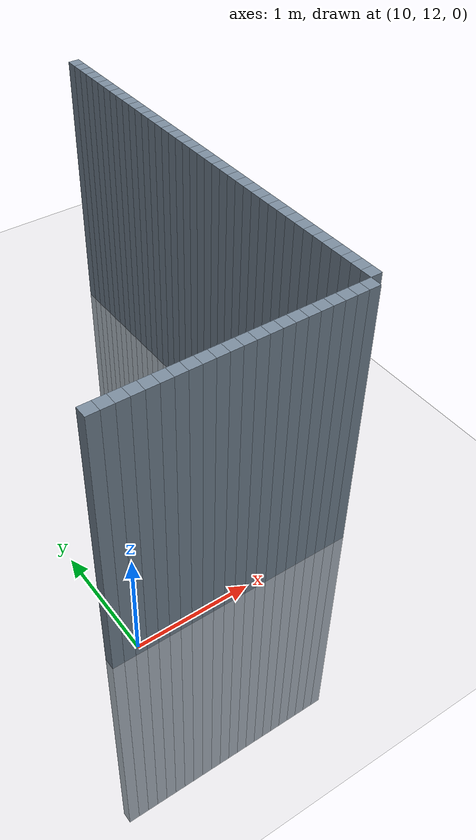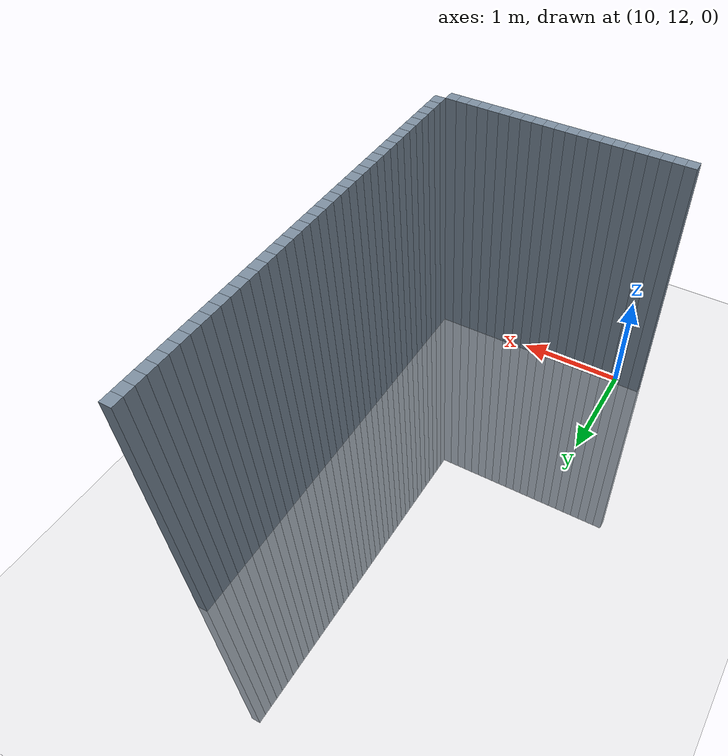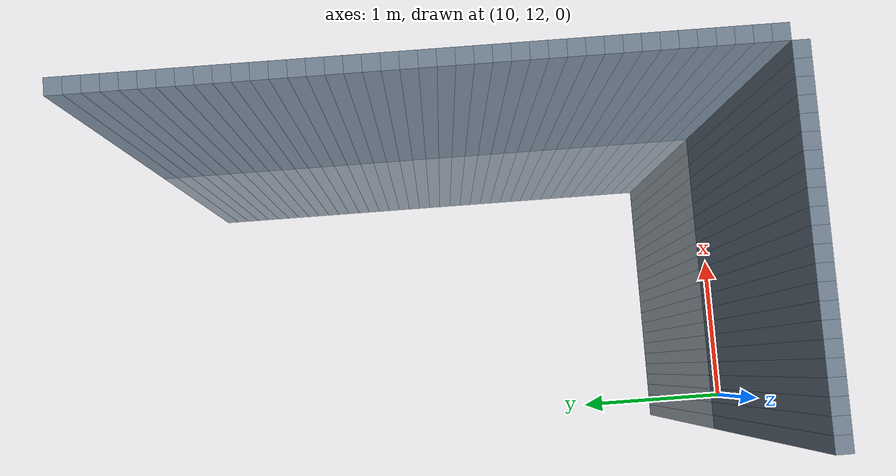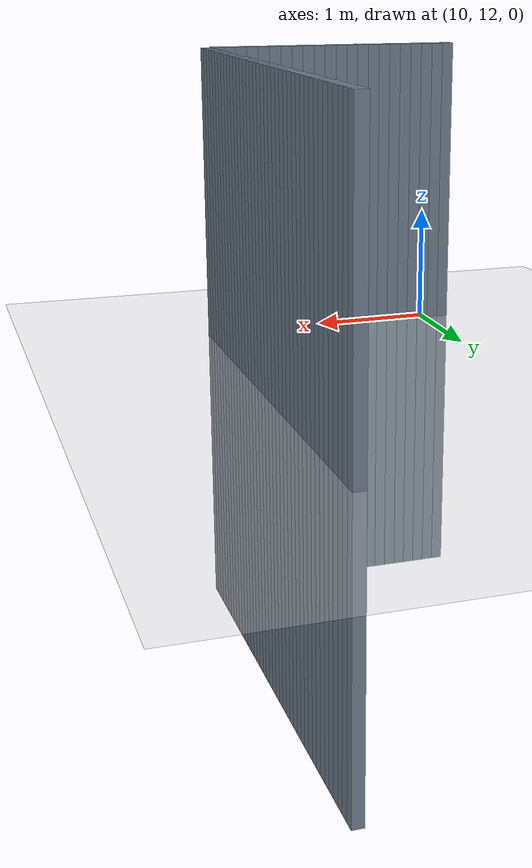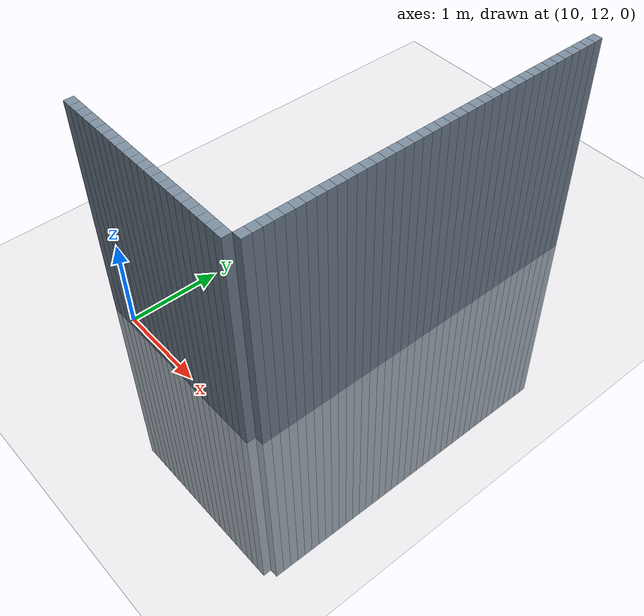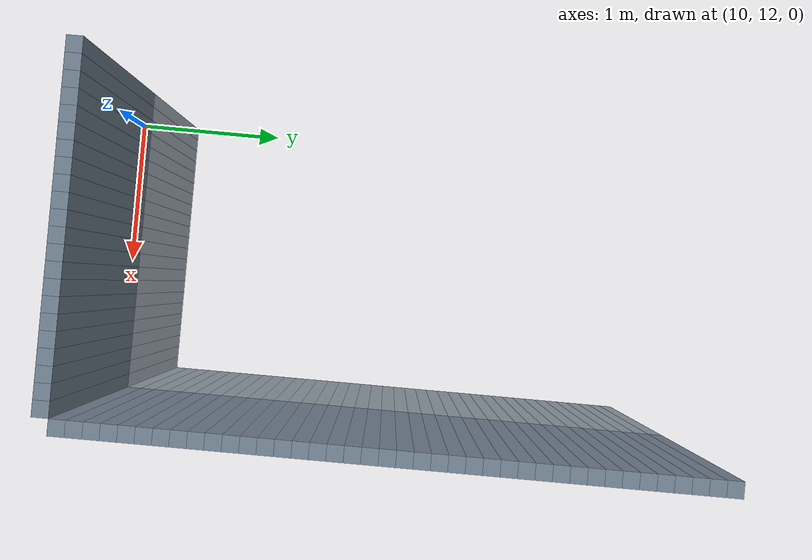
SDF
<sdf version="1.6">
 <world name="default">
  <model name="ground_plane">
   <static>1</static>
   <link name="link">
    <collision name="collision">
     <geometry><plane><normal>0 0 1</normal><size>100 100</size></plane></geometry>
     <surface><friction><ode><mu>100</mu><mu2>50</mu2></ode></friction></surface>
    </collision>
    <visual name="visual">
     <cast_shadows>0</cast_shadows>
     <geometry><plane><normal>0 0 1</normal><size>100 100</size></plane></geometry>
     <material>
      <script><uri>file://media/materials/scripts/gazebo.material</uri><name>Gazebo/Grey</name></script>
     </material>
    </visual>
   </link>
  </model>
  <model name="unit_cylinder_512">
   <static>1</static>
   <pose>9.8 12 0 0 -0 0</pose>
   <link name="link">
    <inertial>
     <mass>1</mass>
     <inertia><ixx>0.145833</ixx><ixy>0</ixy><ixz>0</ixz><iyy>0.145833</iyy><iyz>0</iyz><izz>0.125</izz></inertia>
    </inertial>
    <collision name="collision"><geometry><box><size>0.1 0.1 5</size></box></geometry></collision>
    <visual name="visual">
     <geometry><box><size>0.1 0.1 5</size></box></geometry>
     <material><ambient>0.466667 0.533333 0.6 1</ambient><diffuse>0.466667 0.533333 0.6 1</diffuse></material>
     <material>
      <script><name>Gazebo/Grey</name><uri>file://media/materials/scripts/gazebo.material</uri></script>
     </material>
    </visual>
   </link>
  </model>
  <model name="unit_cylinder_516">
   <static>1</static>
   <pose>9.9 12 0 0 -0 0</pose>
   <link name="link">
    <inertial>
     <mass>1</mass>
     <inertia><ixx>0.145833</ixx><ixy>0</ixy><ixz>0</ixz><iyy>0.145833</iyy><iyz>0</iyz><izz>0.125</izz></inertia>
    </inertial>
    <collision name="collision"><geometry><box><size>0.1 0.1 5</size></box></geometry></collision>
    <visual name="visual">
     <geometry><box><size>0.1 0.1 5</size></box></geometry>
     <material><ambient>0.466667 0.533333 0.6 1</ambient><diffuse>0.466667 0.533333 0.6 1</diffuse></material>
     <material>
      <script><name>Gazebo/Grey</name><uri>file://media/materials/scripts/gazebo.material</uri></script>
     </material>
    </visual>
   </link>
  </model>
  <model name="unit_cylinder_520">
   <static>1</static>
   <pose>10 12 0 0 -0 0</pose>
   <link name="link">
    <inertial>
     <mass>1</mass>
     <inertia><ixx>0.145833</ixx><ixy>0</ixy><ixz>0</ixz><iyy>0.145833</iyy><iyz>0</iyz><izz>0.125</izz></inertia>
    </inertial>
    <collision name="collision"><geometry><box><size>0.1 0.1 5</size></box></geometry></collision>
    <visual name="visual">
     <geometry><box><size>0.1 0.1 5</size></box></geometry>
     <material><ambient>0.466667 0.533333 0.6 1</ambient><diffuse>0.466667 0.533333 0.6 1</diffuse></material>
     <material>
      <script><name>Gazebo/Grey</name><uri>file://media/materials/scripts/gazebo.material</uri></script>
     </material>
    </visual>
   </link>
  </model>
  <model name="unit_cylinder_524">
   <static>1</static>
   <pose>10.1 12 0 0 -0 0</pose>
   <link name="link">
    <inertial>
     <mass>1</mass>
     <inertia><ixx>0.145833</ixx><ixy>0</ixy><ixz>0</ixz><iyy>0.145833</iyy><iyz>0</iyz><izz>0.125</izz></inertia>
    </inertial>
    <collision name="collision"><geometry><box><size>0.1 0.1 5</size></box></geometry></collision>
    <visual name="visual">
     <geometry><box><size>0.1 0.1 5</size></box></geometry>
     <material><ambient>0.466667 0.533333 0.6 1</ambient><diffuse>0.466667 0.533333 0.6 1</diffuse></material>
     <material>
      <script><name>Gazebo/Grey</name><uri>file://media/materials/scripts/gazebo.material</uri></script>
     </material>
    </visual>
   </link>
  </model>
  <model name="unit_cylinder_528">
   <static>1</static>
   <pose>10.2 12 0 0 -0 0</pose>
   <link name="link">
    <inertial>
     <mass>1</mass>
     <inertia><ixx>0.145833</ixx><ixy>0</ixy><ixz>0</ixz><iyy>0.145833</iyy><iyz>0</iyz><izz>0.125</izz></inertia>
    </inertial>
    <collision name="collision"><geometry><box><size>0.1 0.1 5</size></box></geometry></collision>
    <visual name="visual">
     <geometry><box><size>0.1 0.1 5</size></box></geometry>
     <material><ambient>0.466667 0.533333 0.6 1</ambient><diffuse>0.466667 0.533333 0.6 1</diffuse></material>
     <material>
      <script><name>Gazebo/Grey</name><uri>file://media/materials/scripts/gazebo.material</uri></script>
     </material>
    </visual>
   </link>
  </model>
  <model name="unit_cylinder_532">
   <static>1</static>
   <pose>10.3 12 0 0 -0 0</pose>
   <link name="link">
    <inertial>
     <mass>1</mass>
     <inertia><ixx>0.145833</ixx><ixy>0</ixy><ixz>0</ixz><iyy>0.145833</iyy><iyz>0</iyz><izz>0.125</izz></inertia>
    </inertial>
    <collision name="collision"><geometry><box><size>0.1 0.1 5</size></box></geometry></collision>
    <visual name="visual">
     <geometry><box><size>0.1 0.1 5</size></box></geometry>
     <material><ambient>0.466667 0.533333 0.6 1</ambient><diffuse>0.466667 0.533333 0.6 1</diffuse></material>
     <material>
      <script><name>Gazebo/Grey</name><uri>file://media/materials/scripts/gazebo.material</uri></script>
     </material>
    </visual>
   </link>
  </model>
  <model name="unit_cylinder_536">
   <static>1</static>
   <pose>10.4 12 0 0 -0 0</pose>
   <link name="link">
    <inertial>
     <mass>1</mass>
     <inertia><ixx>0.145833</ixx><ixy>0</ixy><ixz>0</ixz><iyy>0.145833</iyy><iyz>0</iyz><izz>0.125</izz></inertia>
    </inertial>
    <collision name="collision"><geometry><box><size>0.1 0.1 5</size></box></geometry></collision>
    <visual name="visual">
     <geometry><box><size>0.1 0.1 5</size></box></geometry>
     <material><ambient>0.466667 0.533333 0.6 1</ambient><diffuse>0.466667 0.533333 0.6 1</diffuse></material>
     <material>
      <script><name>Gazebo/Grey</name><uri>file://media/materials/scripts/gazebo.material</uri></script>
     </material>
    </visual>
   </link>
  </model>
  <model name="unit_cylinder_540">
   <static>1</static>
   <pose>10.5 12 0 0 -0 0</pose>
   <link name="link">
    <inertial>
     <mass>1</mass>
     <inertia><ixx>0.145833</ixx><ixy>0</ixy><ixz>0</ixz><iyy>0.145833</iyy><iyz>0</iyz><izz>0.125</izz></inertia>
    </inertial>
    <collision name="collision"><geometry><box><size>0.1 0.1 5</size></box></geometry></collision>
    <visual name="visual">
     <geometry><box><size>0.1 0.1 5</size></box></geometry>
     <material><ambient>0.466667 0.533333 0.6 1</ambient><diffuse>0.466667 0.533333 0.6 1</diffuse></material>
     <material>
      <script><name>Gazebo/Grey</name><uri>file://media/materials/scripts/gazebo.material</uri></script>
     </material>
    </visual>
   </link>
  </model>
  <model name="unit_cylinder_544">
   <static>1</static>
   <pose>10.6 12 0 0 -0 0</pose>
   <link name="link">
    <inertial>
     <mass>1</mass>
     <inertia><ixx>0.145833</ixx><ixy>0</ixy><ixz>0</ixz><iyy>0.145833</iyy><iyz>0</iyz><izz>0.125</izz></inertia>
    </inertial>
    <collision name="collision"><geometry><box><size>0.1 0.1 5</size></box></geometry></collision>
    <visual name="visual">
     <geometry><box><size>0.1 0.1 5</size></box></geometry>
     <material><ambient>0.466667 0.533333 0.6 1</ambient><diffuse>0.466667 0.533333 0.6 1</diffuse></material>
     <material>
      <script><name>Gazebo/Grey</name><uri>file://media/materials/scripts/gazebo.material</uri></script>
     </material>
    </visual>
   </link>
  </model>
  <model name="unit_cylinder_548">
   <static>1</static>
   <pose>10.7 12 0 0 -0 0</pose>
   <link name="link">
    <inertial>
     <mass>1</mass>
     <inertia><ixx>0.145833</ixx><ixy>0</ixy><ixz>0</ixz><iyy>0.145833</iyy><iyz>0</iyz><izz>0.125</izz></inertia>
    </inertial>
    <collision name="collision"><geometry><box><size>0.1 0.1 5</size></box></geometry></collision>
    <visual name="visual">
     <geometry><box><size>0.1 0.1 5</size></box></geometry>
     <material><ambient>0.466667 0.533333 0.6 1</ambient><diffuse>0.466667 0.533333 0.6 1</diffuse></material>
     <material>
      <script><name>Gazebo/Grey</name><uri>file://media/materials/scripts/gazebo.material</uri></script>
     </material>
    </visual>
   </link>
  </model>
  <model name="unit_cylinder_552">
   <static>1</static>
   <pose>10.8 12 0 0 -0 0</pose>
   <link name="link">
    <inertial>
     <mass>1</mass>
     <inertia><ixx>0.145833</ixx><ixy>0</ixy><ixz>0</ixz><iyy>0.145833</iyy><iyz>0</iyz><izz>0.125</izz></inertia>
    </inertial>
    <collision name="collision"><geometry><box><size>0.1 0.1 5</size></box></geometry></collision>
    <visual name="visual">
     <geometry><box><size>0.1 0.1 5</size></box></geometry>
     <material><ambient>0.466667 0.533333 0.6 1</ambient><diffuse>0.466667 0.533333 0.6 1</diffuse></material>
     <material>
      <script><name>Gazebo/Grey</name><uri>file://media/materials/scripts/gazebo.material</uri></script>
     </material>
    </visual>
   </link>
  </model>
  <model name="unit_cylinder_556">
   <static>1</static>
   <pose>10.9 12 0 0 -0 0</pose>
   <link name="link">
    <inertial>
     <mass>1</mass>
     <inertia><ixx>0.145833</ixx><ixy>0</ixy><ixz>0</ixz><iyy>0.145833</iyy><iyz>0</iyz><izz>0.125</izz></inertia>
    </inertial>
    <collision name="collision"><geometry><box><size>0.1 0.1 5</size></box></geometry></collision>
    <visual name="visual">
     <geometry><box><size>0.1 0.1 5</size></box></geometry>
     <material><ambient>0.466667 0.533333 0.6 1</ambient><diffuse>0.466667 0.533333 0.6 1</diffuse></material>
     <material>
      <script><name>Gazebo/Grey</name><uri>file://media/materials/scripts/gazebo.material</uri></script>
     </material>
    </visual>
   </link>
  </model>
  <model name="unit_cylinder_560">
   <static>1</static>
   <pose>11 12 0 0 -0 0</pose>
   <link name="link">
    <inertial>
     <mass>1</mass>
     <inertia><ixx>0.145833</ixx><ixy>0</ixy><ixz>0</ixz><iyy>0.145833</iyy><iyz>0</iyz><izz>0.125</izz></inertia>
    </inertial>
    <collision name="collision"><geometry><box><size>0.1 0.1 5</size></box></geometry></collision>
    <visual name="visual">
     <geometry><box><size>0.1 0.1 5</size></box></geometry>
     <material><ambient>0.466667 0.533333 0.6 1</ambient><diffuse>0.466667 0.533333 0.6 1</diffuse></material>
     <material>
      <script><name>Gazebo/Grey</name><uri>file://media/materials/scripts/gazebo.material</uri></script>
     </material>
    </visual>
   </link>
  </model>
  <model name="unit_cylinder_564">
   <static>1</static>
   <pose>11.1 12 0 0 -0 0</pose>
   <link name="link">
    <inertial>
     <mass>1</mass>
     <inertia><ixx>0.145833</ixx><ixy>0</ixy><ixz>0</ixz><iyy>0.145833</iyy><iyz>0</iyz><izz>0.125</izz></inertia>
    </inertial>
    <collision name="collision"><geometry><box><size>0.1 0.1 5</size></box></geometry></collision>
    <visual name="visual">
     <geometry><box><size>0.1 0.1 5</size></box></geometry>
     <material><ambient>0.466667 0.533333 0.6 1</ambient><diffuse>0.466667 0.533333 0.6 1</diffuse></material>
     <material>
      <script><name>Gazebo/Grey</name><uri>file://media/materials/scripts/gazebo.material</uri></script>
     </material>
    </visual>
   </link>
  </model>
  <model name="unit_cylinder_568">
   <static>1</static>
   <pose>11.2 12 0 0 -0 0</pose>
   <link name="link">
    <inertial>
     <mass>1</mass>
     <inertia><ixx>0.145833</ixx><ixy>0</ixy><ixz>0</ixz><iyy>0.145833</iyy><iyz>0</iyz><izz>0.125</izz></inertia>
    </inertial>
    <collision name="collision"><geometry><box><size>0.1 0.1 5</size></box></geometry></collision>
    <visual name="visual">
     <geometry><box><size>0.1 0.1 5</size></box></geometry>
     <material><ambient>0.466667 0.533333 0.6 1</ambient><diffuse>0.466667 0.533333 0.6 1</diffuse></material>
     <material>
      <script><name>Gazebo/Grey</name><uri>file://media/materials/scripts/gazebo.material</uri></script>
     </material>
    </visual>
   </link>
  </model>
  <model name="unit_cylinder_572">
   <static>1</static>
   <pose>11.3 12 0 0 -0 0</pose>
   <link name="link">
    <inertial>
     <mass>1</mass>
     <inertia><ixx>0.145833</ixx><ixy>0</ixy><ixz>0</ixz><iyy>0.145833</iyy><iyz>0</iyz><izz>0.125</izz></inertia>
    </inertial>
    <collision name="collision"><geometry><box><size>0.1 0.1 5</size></box></geometry></collision>
    <visual name="visual">
     <geometry><box><size>0.1 0.1 5</size></box></geometry>
     <material><ambient>0.466667 0.533333 0.6 1</ambient><diffuse>0.466667 0.533333 0.6 1</diffuse></material>
     <material>
      <script><name>Gazebo/Grey</name><uri>file://media/materials/scripts/gazebo.material</uri></script>
     </material>
    </visual>
   </link>
  </model>
  <model name="unit_cylinder_576">
   <static>1</static>
   <pose>11.4 12 0 0 -0 0</pose>
   <link name="link">
    <inertial>
     <mass>1</mass>
     <inertia><ixx>0.145833</ixx><ixy>0</ixy><ixz>0</ixz><iyy>0.145833</iyy><iyz>0</iyz><izz>0.125</izz></inertia>
    </inertial>
    <collision name="collision"><geometry><box><size>0.1 0.1 5</size></box></geometry></collision>
    <visual name="visual">
     <geometry><box><size>0.1 0.1 5</size></box></geometry>
     <material><ambient>0.466667 0.533333 0.6 1</ambient><diffuse>0.466667 0.533333 0.6 1</diffuse></material>
     <material>
      <script><name>Gazebo/Grey</name><uri>file://media/materials/scripts/gazebo.material</uri></script>
     </material>
    </visual>
   </link>
  </model>
  <model name="unit_cylinder_580">
   <static>1</static>
   <pose>11.5 12 0 0 -0 0</pose>
   <link name="link">
    <inertial>
     <mass>1</mass>
     <inertia><ixx>0.145833</ixx><ixy>0</ixy><ixz>0</ixz><iyy>0.145833</iyy><iyz>0</iyz><izz>0.125</izz></inertia>
    </inertial>
    <collision name="collision"><geometry><box><size>0.1 0.1 5</size></box></geometry></collision>
    <visual name="visual">
     <geometry><box><size>0.1 0.1 5</size></box></geometry>
     <material><ambient>0.466667 0.533333 0.6 1</ambient><diffuse>0.466667 0.533333 0.6 1</diffuse></material>
     <material>
      <script><name>Gazebo/Grey</name><uri>file://media/materials/scripts/gazebo.material</uri></script>
     </material>
    </visual>
   </link>
  </model>
  <model name="unit_cylinder_584">
   <static>1</static>
   <pose>11.6 12 0 0 -0 0</pose>
   <link name="link">
    <inertial>
     <mass>1</mass>
     <inertia><ixx>0.145833</ixx><ixy>0</ixy><ixz>0</ixz><iyy>0.145833</iyy><iyz>0</iyz><izz>0.125</izz></inertia>
    </inertial>
    <collision name="collision"><geometry><box><size>0.1 0.1 5</size></box></geometry></collision>
    <visual name="visual">
     <geometry><box><size>0.1 0.1 5</size></box></geometry>
     <material><ambient>0.466667 0.533333 0.6 1</ambient><diffuse>0.466667 0.533333 0.6 1</diffuse></material>
     <material>
      <script><name>Gazebo/Grey</name><uri>file://media/materials/scripts/gazebo.material</uri></script>
     </material>
    </visual>
   </link>
  </model>
  <model name="unit_cylinder_588">
   <static>1</static>
   <pose>11.7 12 0 0 -0 0</pose>
   <link name="link">
    <inertial>
     <mass>1</mass>
     <inertia><ixx>0.145833</ixx><ixy>0</ixy><ixz>0</ixz><iyy>0.145833</iyy><iyz>0</iyz><izz>0.125</izz></inertia>
    </inertial>
    <collision name="collision"><geometry><box><size>0.1 0.1 5</size></box></geometry></collision>
    <visual name="visual">
     <geometry><box><size>0.1 0.1 5</size></box></geometry>
     <material><ambient>0.466667 0.533333 0.6 1</ambient><diffuse>0.466667 0.533333 0.6 1</diffuse></material>
     <material>
      <script><name>Gazebo/Grey</name><uri>file://media/materials/scripts/gazebo.material</uri></script>
     </material>
    </visual>
   </link>
  </model>
  <model name="unit_cylinder_592">
   <static>1</static>
   <pose>11.8 12 0 0 -0 0</pose>
   <link name="link">
    <inertial>
     <mass>1</mass>
     <inertia><ixx>0.145833</ixx><ixy>0</ixy><ixz>0</ixz><iyy>0.145833</iyy><iyz>0</iyz><izz>0.125</izz></inertia>
    </inertial>
    <collision name="collision"><geometry><box><size>0.1 0.1 5</size></box></geometry></collision>
    <visual name="visual">
     <geometry><box><size>0.1 0.1 5</size></box></geometry>
     <material><ambient>0.466667 0.533333 0.6 1</ambient><diffuse>0.466667 0.533333 0.6 1</diffuse></material>
     <material>
      <script><name>Gazebo/Grey</name><uri>file://media/materials/scripts/gazebo.material</uri></script>
     </material>
    </visual>
   </link>
  </model>
  <model name="unit_cylinder_596">
   <static>1</static>
   <pose>11.9 12 0 0 -0 0</pose>
   <link name="link">
    <inertial>
     <mass>1</mass>
     <inertia><ixx>0.145833</ixx><ixy>0</ixy><ixz>0</ixz><iyy>0.145833</iyy><iyz>0</iyz><izz>0.125</izz></inertia>
    </inertial>
    <collision name="collision"><geometry><box><size>0.1 0.1 5</size></box></geometry></collision>
    <visual name="visual">
     <geometry><box><size>0.1 0.1 5</size></box></geometry>
     <material><ambient>0.466667 0.533333 0.6 1</ambient><diffuse>0.466667 0.533333 0.6 1</diffuse></material>
     <material>
      <script><name>Gazebo/Grey</name><uri>file://media/materials/scripts/gazebo.material</uri></script>
     </material>
    </visual>
   </link>
  </model>
  <model name="unit_cylinder_719">
   <static>1</static>
   <pose>12 12.1 0 0 -0 0</pose>
   <link name="link">
    <inertial>
     <mass>1</mass>
     <inertia><ixx>0.145833</ixx><ixy>0</ixy><ixz>0</ixz><iyy>0.145833</iyy><iyz>0</iyz><izz>0.125</izz></inertia>
    </inertial>
    <collision name="collision"><geometry><box><size>0.1 0.1 5</size></box></geometry></collision>
    <visual name="visual">
     <geometry><box><size>0.1 0.1 5</size></box></geometry>
     <material><ambient>0.466667 0.533333 0.6 1</ambient><diffuse>0.466667 0.533333 0.6 1</diffuse></material>
     <material>
      <script><name>Gazebo/Grey</name><uri>file://media/materials/scripts/gazebo.material</uri></script>
     </material>
    </visual>
   </link>
  </model>
  <model name="unit_cylinder_720">
   <static>1</static>
   <pose>12 12.2 0 0 -0 0</pose>
   <link name="link">
    <inertial>
     <mass>1</mass>
     <inertia><ixx>0.145833</ixx><ixy>0</ixy><ixz>0</ixz><iyy>0.145833</iyy><iyz>0</iyz><izz>0.125</izz></inertia>
    </inertial>
    <collision name="collision"><geometry><box><size>0.1 0.1 5</size></box></geometry></collision>
    <visual name="visual">
     <geometry><box><size>0.1 0.1 5</size></box></geometry>
     <material><ambient>0.466667 0.533333 0.6 1</ambient><diffuse>0.466667 0.533333 0.6 1</diffuse></material>
     <material>
      <script><name>Gazebo/Grey</name><uri>file://media/materials/scripts/gazebo.material</uri></script>
     </material>
    </visual>
   </link>
  </model>
  <model name="unit_cylinder_721">
   <static>1</static>
   <pose>12 12.3 0 0 -0 0</pose>
   <link name="link">
    <inertial>
     <mass>1</mass>
     <inertia><ixx>0.145833</ixx><ixy>0</ixy><ixz>0</ixz><iyy>0.145833</iyy><iyz>0</iyz><izz>0.125</izz></inertia>
    </inertial>
    <collision name="collision"><geometry><box><size>0.1 0.1 5</size></box></geometry></collision>
    <visual name="visual">
     <geometry><box><size>0.1 0.1 5</size></box></geometry>
     <material><ambient>0.466667 0.533333 0.6 1</ambient><diffuse>0.466667 0.533333 0.6 1</diffuse></material>
     <material>
      <script><name>Gazebo/Grey</name><uri>file://media/materials/scripts/gazebo.material</uri></script>
     </material>
    </visual>
   </link>
  </model>
  <model name="unit_cylinder_722">
   <static>1</static>
   <pose>12 12.4 0 0 -0 0</pose>
   <link name="link">
    <inertial>
     <mass>1</mass>
     <inertia><ixx>0.145833</ixx><ixy>0</ixy><ixz>0</ixz><iyy>0.145833</iyy><iyz>0</iyz><izz>0.125</izz></inertia>
    </inertial>
    <collision name="collision"><geometry><box><size>0.1 0.1 5</size></box></geometry></collision>
    <visual name="visual">
     <geometry><box><size>0.1 0.1 5</size></box></geometry>
     <material><ambient>0.466667 0.533333 0.6 1</ambient><diffuse>0.466667 0.533333 0.6 1</diffuse></material>
     <material>
      <script><name>Gazebo/Grey</name><uri>file://media/materials/scripts/gazebo.material</uri></script>
     </material>
    </visual>
   </link>
  </model>
  <model name="unit_cylinder_723">
   <static>1</static>
   <pose>12 12.5 0 0 -0 0</pose>
   <link name="link">
    <inertial>
     <mass>1</mass>
     <inertia><ixx>0.145833</ixx><ixy>0</ixy><ixz>0</ixz><iyy>0.145833</iyy><iyz>0</iyz><izz>0.125</izz></inertia>
    </inertial>
    <collision name="collision"><geometry><box><size>0.1 0.1 5</size></box></geometry></collision>
    <visual name="visual">
     <geometry><box><size>0.1 0.1 5</size></box></geometry>
     <material><ambient>0.466667 0.533333 0.6 1</ambient><diffuse>0.466667 0.533333 0.6 1</diffuse></material>
     <material>
      <script><name>Gazebo/Grey</name><uri>file://media/materials/scripts/gazebo.material</uri></script>
     </material>
    </visual>
   </link>
  </model>
  <model name="unit_cylinder_724">
   <static>1</static>
   <pose>12 12.6 0 0 -0 0</pose>
   <link name="link">
    <inertial>
     <mass>1</mass>
     <inertia><ixx>0.145833</ixx><ixy>0</ixy><ixz>0</ixz><iyy>0.145833</iyy><iyz>0</iyz><izz>0.125</izz></inertia>
    </inertial>
    <collision name="collision"><geometry><box><size>0.1 0.1 5</size></box></geometry></collision>
    <visual name="visual">
     <geometry><box><size>0.1 0.1 5</size></box></geometry>
     <material><ambient>0.466667 0.533333 0.6 1</ambient><diffuse>0.466667 0.533333 0.6 1</diffuse></material>
     <material>
      <script><name>Gazebo/Grey</name><uri>file://media/materials/scripts/gazebo.material</uri></script>
     </material>
    </visual>
   </link>
  </model>
  <model name="unit_cylinder_725">
   <static>1</static>
   <pose>12 12.7 0 0 -0 0</pose>
   <link name="link">
    <inertial>
     <mass>1</mass>
     <inertia><ixx>0.145833</ixx><ixy>0</ixy><ixz>0</ixz><iyy>0.145833</iyy><iyz>0</iyz><izz>0.125</izz></inertia>
    </inertial>
    <collision name="collision"><geometry><box><size>0.1 0.1 5</size></box></geometry></collision>
    <visual name="visual">
     <geometry><box><size>0.1 0.1 5</size></box></geometry>
     <material><ambient>0.466667 0.533333 0.6 1</ambient><diffuse>0.466667 0.533333 0.6 1</diffuse></material>
     <material>
      <script><name>Gazebo/Grey</name><uri>file://media/materials/scripts/gazebo.material</uri></script>
     </material>
    </visual>
   </link>
  </model>
  <model name="unit_cylinder_726">
   <static>1</static>
   <pose>12 12.8 0 0 -0 0</pose>
   <link name="link">
    <inertial>
     <mass>1</mass>
     <inertia><ixx>0.145833</ixx><ixy>0</ixy><ixz>0</ixz><iyy>0.145833</iyy><iyz>0</iyz><izz>0.125</izz></inertia>
    </inertial>
    <collision name="collision"><geometry><box><size>0.1 0.1 5</size></box></geometry></collision>
    <visual name="visual">
     <geometry><box><size>0.1 0.1 5</size></box></geometry>
     <material><ambient>0.466667 0.533333 0.6 1</ambient><diffuse>0.466667 0.533333 0.6 1</diffuse></material>
     <material>
      <script><name>Gazebo/Grey</name><uri>file://media/materials/scripts/gazebo.material</uri></script>
     </material>
    </visual>
   </link>
  </model>
  <model name="unit_cylinder_727">
   <static>1</static>
   <pose>12 12.9 0 0 -0 0</pose>
   <link name="link">
    <inertial>
     <mass>1</mass>
     <inertia><ixx>0.145833</ixx><ixy>0</ixy><ixz>0</ixz><iyy>0.145833</iyy><iyz>0</iyz><izz>0.125</izz></inertia>
    </inertial>
    <collision name="collision"><geometry><box><size>0.1 0.1 5</size></box></geometry></collision>
    <visual name="visual">
     <geometry><box><size>0.1 0.1 5</size></box></geometry>
     <material><ambient>0.466667 0.533333 0.6 1</ambient><diffuse>0.466667 0.533333 0.6 1</diffuse></material>
     <material>
      <script><name>Gazebo/Grey</name><uri>file://media/materials/scripts/gazebo.material</uri></script>
     </material>
    </visual>
   </link>
  </model>
  <model name="unit_cylinder_728">
   <static>1</static>
   <pose>12 13 0 0 -0 0</pose>
   <link name="link">
    <inertial>
     <mass>1</mass>
     <inertia><ixx>0.145833</ixx><ixy>0</ixy><ixz>0</ixz><iyy>0.145833</iyy><iyz>0</iyz><izz>0.125</izz></inertia>
    </inertial>
    <collision name="collision"><geometry><box><size>0.1 0.1 5</size></box></geometry></collision>
    <visual name="visual">
     <geometry><box><size>0.1 0.1 5</size></box></geometry>
     <material><ambient>0.466667 0.533333 0.6 1</ambient><diffuse>0.466667 0.533333 0.6 1</diffuse></material>
     <material>
      <script><name>Gazebo/Grey</name><uri>file://media/materials/scripts/gazebo.material</uri></script>
     </material>
    </visual>
   </link>
  </model>
  <model name="unit_cylinder_729">
   <static>1</static>
   <pose>12 13.1 0 0 -0 0</pose>
   <link name="link">
    <inertial>
     <mass>1</mass>
     <inertia><ixx>0.145833</ixx><ixy>0</ixy><ixz>0</ixz><iyy>0.145833</iyy><iyz>0</iyz><izz>0.125</izz></inertia>
    </inertial>
    <collision name="collision"><geometry><box><size>0.1 0.1 5</size></box></geometry></collision>
    <visual name="visual">
     <geometry><box><size>0.1 0.1 5</size></box></geometry>
     <material><ambient>0.466667 0.533333 0.6 1</ambient><diffuse>0.466667 0.533333 0.6 1</diffuse></material>
     <material>
      <script><name>Gazebo/Grey</name><uri>file://media/materials/scripts/gazebo.material</uri></script>
     </material>
    </visual>
   </link>
  </model>
  <model name="unit_cylinder_730">
   <static>1</static>
   <pose>12 13.2 0 0 -0 0</pose>
   <link name="link">
    <inertial>
     <mass>1</mass>
     <inertia><ixx>0.145833</ixx><ixy>0</ixy><ixz>0</ixz><iyy>0.145833</iyy><iyz>0</iyz><izz>0.125</izz></inertia>
    </inertial>
    <collision name="collision"><geometry><box><size>0.1 0.1 5</size></box></geometry></collision>
    <visual name="visual">
     <geometry><box><size>0.1 0.1 5</size></box></geometry>
     <material><ambient>0.466667 0.533333 0.6 1</ambient><diffuse>0.466667 0.533333 0.6 1</diffuse></material>
     <material>
      <script><name>Gazebo/Grey</name><uri>file://media/materials/scripts/gazebo.material</uri></script>
     </material>
    </visual>
   </link>
  </model>
  <model name="unit_cylinder_731">
   <static>1</static>
   <pose>12 13.3 0 0 -0 0</pose>
   <link name="link">
    <inertial>
     <mass>1</mass>
     <inertia><ixx>0.145833</ixx><ixy>0</ixy><ixz>0</ixz><iyy>0.145833</iyy><iyz>0</iyz><izz>0.125</izz></inertia>
    </inertial>
    <collision name="collision"><geometry><box><size>0.1 0.1 5</size></box></geometry></collision>
    <visual name="visual">
     <geometry><box><size>0.1 0.1 5</size></box></geometry>
     <material><ambient>0.466667 0.533333 0.6 1</ambient><diffuse>0.466667 0.533333 0.6 1</diffuse></material>
     <material>
      <script><name>Gazebo/Grey</name><uri>file://media/materials/scripts/gazebo.material</uri></script>
     </material>
    </visual>
   </link>
  </model>
  <model name="unit_cylinder_732">
   <static>1</static>
   <pose>12 13.4 0 0 -0 0</pose>
   <link name="link">
    <inertial>
     <mass>1</mass>
     <inertia><ixx>0.145833</ixx><ixy>0</ixy><ixz>0</ixz><iyy>0.145833</iyy><iyz>0</iyz><izz>0.125</izz></inertia>
    </inertial>
    <collision name="collision"><geometry><box><size>0.1 0.1 5</size></box></geometry></collision>
    <visual name="visual">
     <geometry><box><size>0.1 0.1 5</size></box></geometry>
     <material><ambient>0.466667 0.533333 0.6 1</ambient><diffuse>0.466667 0.533333 0.6 1</diffuse></material>
     <material>
      <script><name>Gazebo/Grey</name><uri>file://media/materials/scripts/gazebo.material</uri></script>
     </material>
    </visual>
   </link>
  </model>
  <model name="unit_cylinder_733">
   <static>1</static>
   <pose>12 13.5 0 0 -0 0</pose>
   <link name="link">
    <inertial>
     <mass>1</mass>
     <inertia><ixx>0.145833</ixx><ixy>0</ixy><ixz>0</ixz><iyy>0.145833</iyy><iyz>0</iyz><izz>0.125</izz></inertia>
    </inertial>
    <collision name="collision"><geometry><box><size>0.1 0.1 5</size></box></geometry></collision>
    <visual name="visual">
     <geometry><box><size>0.1 0.1 5</size></box></geometry>
     <material><ambient>0.466667 0.533333 0.6 1</ambient><diffuse>0.466667 0.533333 0.6 1</diffuse></material>
     <material>
      <script><name>Gazebo/Grey</name><uri>file://media/materials/scripts/gazebo.material</uri></script>
     </material>
    </visual>
   </link>
  </model>
  <model name="unit_cylinder_734">
   <static>1</static>
   <pose>12 13.6 0 0 -0 0</pose>
   <link name="link">
    <inertial>
     <mass>1</mass>
     <inertia><ixx>0.145833</ixx><ixy>0</ixy><ixz>0</ixz><iyy>0.145833</iyy><iyz>0</iyz><izz>0.125</izz></inertia>
    </inertial>
    <collision name="collision"><geometry><box><size>0.1 0.1 5</size></box></geometry></collision>
    <visual name="visual">
     <geometry><box><size>0.1 0.1 5</size></box></geometry>
     <material><ambient>0.466667 0.533333 0.6 1</ambient><diffuse>0.466667 0.533333 0.6 1</diffuse></material>
     <material>
      <script><name>Gazebo/Grey</name><uri>file://media/materials/scripts/gazebo.material</uri></script>
     </material>
    </visual>
   </link>
  </model>
  <model name="unit_cylinder_735">
   <static>1</static>
   <pose>12 13.7 0 0 -0 0</pose>
   <link name="link">
    <inertial>
     <mass>1</mass>
     <inertia><ixx>0.145833</ixx><ixy>0</ixy><ixz>0</ixz><iyy>0.145833</iyy><iyz>0</iyz><izz>0.125</izz></inertia>
    </inertial>
    <collision name="collision"><geometry><box><size>0.1 0.1 5</size></box></geometry></collision>
    <visual name="visual">
     <geometry><box><size>0.1 0.1 5</size></box></geometry>
     <material><ambient>0.466667 0.533333 0.6 1</ambient><diffuse>0.466667 0.533333 0.6 1</diffuse></material>
     <material>
      <script><name>Gazebo/Grey</name><uri>file://media/materials/scripts/gazebo.material</uri></script>
     </material>
    </visual>
   </link>
  </model>
  <model name="unit_cylinder_736">
   <static>1</static>
   <pose>12 13.8 0 0 -0 0</pose>
   <link name="link">
    <inertial>
     <mass>1</mass>
     <inertia><ixx>0.145833</ixx><ixy>0</ixy><ixz>0</ixz><iyy>0.145833</iyy><iyz>0</iyz><izz>0.125</izz></inertia>
    </inertial>
    <collision name="collision"><geometry><box><size>0.1 0.1 5</size></box></geometry></collision>
    <visual name="visual">
     <geometry><box><size>0.1 0.1 5</size></box></geometry>
     <material><ambient>0.466667 0.533333 0.6 1</ambient><diffuse>0.466667 0.533333 0.6 1</diffuse></material>
     <material>
      <script><name>Gazebo/Grey</name><uri>file://media/materials/scripts/gazebo.material</uri></script>
     </material>
    </visual>
   </link>
  </model>
  <model name="unit_cylinder_737">
   <static>1</static>
   <pose>12 13.9 0 0 -0 0</pose>
   <link name="link">
    <inertial>
     <mass>1</mass>
     <inertia><ixx>0.145833</ixx><ixy>0</ixy><ixz>0</ixz><iyy>0.145833</iyy><iyz>0</iyz><izz>0.125</izz></inertia>
    </inertial>
    <collision name="collision"><geometry><box><size>0.1 0.1 5</size></box></geometry></collision>
    <visual name="visual">
     <geometry><box><size>0.1 0.1 5</size></box></geometry>
     <material><ambient>0.466667 0.533333 0.6 1</ambient><diffuse>0.466667 0.533333 0.6 1</diffuse></material>
     <material>
      <script><name>Gazebo/Grey</name><uri>file://media/materials/scripts/gazebo.material</uri></script>
     </material>
    </visual>
   </link>
  </model>
  <model name="unit_cylinder_738">
   <static>1</static>
   <pose>12 14 0 0 -0 0</pose>
   <link name="link">
    <inertial>
     <mass>1</mass>
     <inertia><ixx>0.145833</ixx><ixy>0</ixy><ixz>0</ixz><iyy>0.145833</iyy><iyz>0</iyz><izz>0.125</izz></inertia>
    </inertial>
    <collision name="collision"><geometry><box><size>0.1 0.1 5</size></box></geometry></collision>
    <visual name="visual">
     <geometry><box><size>0.1 0.1 5</size></box></geometry>
     <material><ambient>0.466667 0.533333 0.6 1</ambient><diffuse>0.466667 0.533333 0.6 1</diffuse></material>
     <material>
      <script><name>Gazebo/Grey</name><uri>file://media/materials/scripts/gazebo.material</uri></script>
     </material>
    </visual>
   </link>
  </model>
  <model name="unit_cylinder_739">
   <static>1</static>
   <pose>12 14.1 0 0 -0 0</pose>
   <link name="link">
    <inertial>
     <mass>1</mass>
     <inertia><ixx>0.145833</ixx><ixy>0</ixy><ixz>0</ixz><iyy>0.145833</iyy><iyz>0</iyz><izz>0.125</izz></inertia>
    </inertial>
    <collision name="collision"><geometry><box><size>0.1 0.1 5</size></box></geometry></collision>
    <visual name="visual">
     <geometry><box><size>0.1 0.1 5</size></box></geometry>
     <material><ambient>0.466667 0.533333 0.6 1</ambient><diffuse>0.466667 0.533333 0.6 1</diffuse></material>
     <material>
      <script><name>Gazebo/Grey</name><uri>file://media/materials/scripts/gazebo.material</uri></script>
     </material>
    </visual>
   </link>
  </model>
  <model name="unit_cylinder_740">
   <static>1</static>
   <pose>12 14.2 0 0 -0 0</pose>
   <link name="link">
    <inertial>
     <mass>1</mass>
     <inertia><ixx>0.145833</ixx><ixy>0</ixy><ixz>0</ixz><iyy>0.145833</iyy><iyz>0</iyz><izz>0.125</izz></inertia>
    </inertial>
    <collision name="collision"><geometry><box><size>0.1 0.1 5</size></box></geometry></collision>
    <visual name="visual">
     <geometry><box><size>0.1 0.1 5</size></box></geometry>
     <material><ambient>0.466667 0.533333 0.6 1</ambient><diffuse>0.466667 0.533333 0.6 1</diffuse></material>
     <material>
      <script><name>Gazebo/Grey</name><uri>file://media/materials/scripts/gazebo.material</uri></script>
     </material>
    </visual>
   </link>
  </model>
  <model name="unit_cylinder_741">
   <static>1</static>
   <pose>12 14.3 0 0 -0 0</pose>
   <link name="link">
    <inertial>
     <mass>1</mass>
     <inertia><ixx>0.145833</ixx><ixy>0</ixy><ixz>0</ixz><iyy>0.145833</iyy><iyz>0</iyz><izz>0.125</izz></inertia>
    </inertial>
    <collision name="collision"><geometry><box><size>0.1 0.1 5</size></box></geometry></collision>
    <visual name="visual">
     <geometry><box><size>0.1 0.1 5</size></box></geometry>
     <material><ambient>0.466667 0.533333 0.6 1</ambient><diffuse>0.466667 0.533333 0.6 1</diffuse></material>
     <material>
      <script><name>Gazebo/Grey</name><uri>file://media/materials/scripts/gazebo.material</uri></script>
     </material>
    </visual>
   </link>
  </model>
  <model name="unit_cylinder_742">
   <static>1</static>
   <pose>12 14.4 0 0 -0 0</pose>
   <link name="link">
    <inertial>
     <mass>1</mass>
     <inertia><ixx>0.145833</ixx><ixy>0</ixy><ixz>0</ixz><iyy>0.145833</iyy><iyz>0</iyz><izz>0.125</izz></inertia>
    </inertial>
    <collision name="collision"><geometry><box><size>0.1 0.1 5</size></box></geometry></collision>
    <visual name="visual">
     <geometry><box><size>0.1 0.1 5</size></box></geometry>
     <material><ambient>0.466667 0.533333 0.6 1</ambient><diffuse>0.466667 0.533333 0.6 1</diffuse></material>
     <material>
      <script><name>Gazebo/Grey</name><uri>file://media/materials/scripts/gazebo.material</uri></script>
     </material>
    </visual>
   </link>
  </model>
  <model name="unit_cylinder_743">
   <static>1</static>
   <pose>12 14.5 0 0 -0 0</pose>
   <link name="link">
    <inertial>
     <mass>1</mass>
     <inertia><ixx>0.145833</ixx><ixy>0</ixy><ixz>0</ixz><iyy>0.145833</iyy><iyz>0</iyz><izz>0.125</izz></inertia>
    </inertial>
    <collision name="collision"><geometry><box><size>0.1 0.1 5</size></box></geometry></collision>
    <visual name="visual">
     <geometry><box><size>0.1 0.1 5</size></box></geometry>
     <material><ambient>0.466667 0.533333 0.6 1</ambient><diffuse>0.466667 0.533333 0.6 1</diffuse></material>
     <material>
      <script><name>Gazebo/Grey</name><uri>file://media/materials/scripts/gazebo.material</uri></script>
     </material>
    </visual>
   </link>
  </model>
  <model name="unit_cylinder_744">
   <static>1</static>
   <pose>12 14.6 0 0 -0 0</pose>
   <link name="link">
    <inertial>
     <mass>1</mass>
     <inertia><ixx>0.145833</ixx><ixy>0</ixy><ixz>0</ixz><iyy>0.145833</iyy><iyz>0</iyz><izz>0.125</izz></inertia>
    </inertial>
    <collision name="collision"><geometry><box><size>0.1 0.1 5</size></box></geometry></collision>
    <visual name="visual">
     <geometry><box><size>0.1 0.1 5</size></box></geometry>
     <material><ambient>0.466667 0.533333 0.6 1</ambient><diffuse>0.466667 0.533333 0.6 1</diffuse></material>
     <material>
      <script><name>Gazebo/Grey</name><uri>file://media/materials/scripts/gazebo.material</uri></script>
     </material>
    </visual>
   </link>
  </model>
  <model name="unit_cylinder_745">
   <static>1</static>
   <pose>12 14.7 0 0 -0 0</pose>
   <link name="link">
    <inertial>
     <mass>1</mass>
     <inertia><ixx>0.145833</ixx><ixy>0</ixy><ixz>0</ixz><iyy>0.145833</iyy><iyz>0</iyz><izz>0.125</izz></inertia>
    </inertial>
    <collision name="collision"><geometry><box><size>0.1 0.1 5</size></box></geometry></collision>
    <visual name="visual">
     <geometry><box><size>0.1 0.1 5</size></box></geometry>
     <material><ambient>0.466667 0.533333 0.6 1</ambient><diffuse>0.466667 0.533333 0.6 1</diffuse></material>
     <material>
      <script><name>Gazebo/Grey</name><uri>file://media/materials/scripts/gazebo.material</uri></script>
     </material>
    </visual>
   </link>
  </model>
  <model name="unit_cylinder_746">
   <static>1</static>
   <pose>12 14.8 0 0 -0 0</pose>
   <link name="link">
    <inertial>
     <mass>1</mass>
     <inertia><ixx>0.145833</ixx><ixy>0</ixy><ixz>0</ixz><iyy>0.145833</iyy><iyz>0</iyz><izz>0.125</izz></inertia>
    </inertial>
    <collision name="collision"><geometry><box><size>0.1 0.1 5</size></box></geometry></collision>
    <visual name="visual">
     <geometry><box><size>0.1 0.1 5</size></box></geometry>
     <material><ambient>0.466667 0.533333 0.6 1</ambient><diffuse>0.466667 0.533333 0.6 1</diffuse></material>
     <material>
      <script><name>Gazebo/Grey</name><uri>file://media/materials/scripts/gazebo.material</uri></script>
     </material>
    </visual>
   </link>
  </model>
  <model name="unit_cylinder_747">
   <static>1</static>
   <pose>12 14.9 0 0 -0 0</pose>
   <link name="link">
    <inertial>
     <mass>1</mass>
     <inertia><ixx>0.145833</ixx><ixy>0</ixy><ixz>0</ixz><iyy>0.145833</iyy><iyz>0</iyz><izz>0.125</izz></inertia>
    </inertial>
    <collision name="collision"><geometry><box><size>0.1 0.1 5</size></box></geometry></collision>
    <visual name="visual">
     <geometry><box><size>0.1 0.1 5</size></box></geometry>
     <material><ambient>0.466667 0.533333 0.6 1</ambient><diffuse>0.466667 0.533333 0.6 1</diffuse></material>
     <material>
      <script><name>Gazebo/Grey</name><uri>file://media/materials/scripts/gazebo.material</uri></script>
     </material>
    </visual>
   </link>
  </model>
  <model name="unit_cylinder_748">
   <static>1</static>
   <pose>12 15 0 0 -0 0</pose>
   <link name="link">
    <inertial>
     <mass>1</mass>
     <inertia><ixx>0.145833</ixx><ixy>0</ixy><ixz>0</ixz><iyy>0.145833</iyy><iyz>0</iyz><izz>0.125</izz></inertia>
    </inertial>
    <collision name="collision"><geometry><box><size>0.1 0.1 5</size></box></geometry></collision>
    <visual name="visual">
     <geometry><box><size>0.1 0.1 5</size></box></geometry>
     <material><ambient>0.466667 0.533333 0.6 1</ambient><diffuse>0.466667 0.533333 0.6 1</diffuse></material>
     <material>
      <script><name>Gazebo/Grey</name><uri>file://media/materials/scripts/gazebo.material</uri></script>
     </material>
    </visual>
   </link>
  </model>
  <model name="unit_cylinder_749">
   <static>1</static>
   <pose>12 15.1 0 0 -0 0</pose>
   <link name="link">
    <inertial>
     <mass>1</mass>
     <inertia><ixx>0.145833</ixx><ixy>0</ixy><ixz>0</ixz><iyy>0.145833</iyy><iyz>0</iyz><izz>0.125</izz></inertia>
    </inertial>
    <collision name="collision"><geometry><box><size>0.1 0.1 5</size></box></geometry></collision>
    <visual name="visual">
     <geometry><box><size>0.1 0.1 5</size></box></geometry>
     <material><ambient>0.466667 0.533333 0.6 1</ambient><diffuse>0.466667 0.533333 0.6 1</diffuse></material>
     <material>
      <script><name>Gazebo/Grey</name><uri>file://media/materials/scripts/gazebo.material</uri></script>
     </material>
    </visual>
   </link>
  </model>
  <model name="unit_cylinder_750">
   <static>1</static>
   <pose>12 15.2 0 0 -0 0</pose>
   <link name="link">
    <inertial>
     <mass>1</mass>
     <inertia><ixx>0.145833</ixx><ixy>0</ixy><ixz>0</ixz><iyy>0.145833</iyy><iyz>0</iyz><izz>0.125</izz></inertia>
    </inertial>
    <collision name="collision"><geometry><box><size>0.1 0.1 5</size></box></geometry></collision>
    <visual name="visual">
     <geometry><box><size>0.1 0.1 5</size></box></geometry>
     <material><ambient>0.466667 0.533333 0.6 1</ambient><diffuse>0.466667 0.533333 0.6 1</diffuse></material>
     <material>
      <script><name>Gazebo/Grey</name><uri>file://media/materials/scripts/gazebo.material</uri></script>
     </material>
    </visual>
   </link>
  </model>
  <model name="unit_cylinder_751">
   <static>1</static>
   <pose>12 15.3 0 0 -0 0</pose>
   <link name="link">
    <inertial>
     <mass>1</mass>
     <inertia><ixx>0.145833</ixx><ixy>0</ixy><ixz>0</ixz><iyy>0.145833</iyy><iyz>0</iyz><izz>0.125</izz></inertia>
    </inertial>
    <collision name="collision"><geometry><box><size>0.1 0.1 5</size></box></geometry></collision>
    <visual name="visual">
     <geometry><box><size>0.1 0.1 5</size></box></geometry>
     <material><ambient>0.466667 0.533333 0.6 1</ambient><diffuse>0.466667 0.533333 0.6 1</diffuse></material>
     <material>
      <script><name>Gazebo/Grey</name><uri>file://media/materials/scripts/gazebo.material</uri></script>
     </material>
    </visual>
   </link>
  </model>
  <model name="unit_cylinder_752">
   <static>1</static>
   <pose>12 15.4 0 0 -0 0</pose>
   <link name="link">
    <inertial>
     <mass>1</mass>
     <inertia><ixx>0.145833</ixx><ixy>0</ixy><ixz>0</ixz><iyy>0.145833</iyy><iyz>0</iyz><izz>0.125</izz></inertia>
    </inertial>
    <collision name="collision"><geometry><box><size>0.1 0.1 5</size></box></geometry></collision>
    <visual name="visual">
     <geometry><box><size>0.1 0.1 5</size></box></geometry>
     <material><ambient>0.466667 0.533333 0.6 1</ambient><diffuse>0.466667 0.533333 0.6 1</diffuse></material>
     <material>
      <script><name>Gazebo/Grey</name><uri>file://media/materials/scripts/gazebo.material</uri></script>
     </material>
    </visual>
   </link>
  </model>
  <model name="unit_cylinder_753">
   <static>1</static>
   <pose>12 15.5 0 0 -0 0</pose>
   <link name="link">
    <inertial>
     <mass>1</mass>
     <inertia><ixx>0.145833</ixx><ixy>0</ixy><ixz>0</ixz><iyy>0.145833</iyy><iyz>0</iyz><izz>0.125</izz></inertia>
    </inertial>
    <collision name="collision"><geometry><box><size>0.1 0.1 5</size></box></geometry></collision>
    <visual name="visual">
     <geometry><box><size>0.1 0.1 5</size></box></geometry>
     <material><ambient>0.466667 0.533333 0.6 1</ambient><diffuse>0.466667 0.533333 0.6 1</diffuse></material>
     <material>
      <script><name>Gazebo/Grey</name><uri>file://media/materials/scripts/gazebo.material</uri></script>
     </material>
    </visual>
   </link>
  </model>
  <model name="unit_cylinder_754">
   <static>1</static>
   <pose>12 15.6 0 0 -0 0</pose>
   <link name="link">
    <inertial>
     <mass>1</mass>
     <inertia><ixx>0.145833</ixx><ixy>0</ixy><ixz>0</ixz><iyy>0.145833</iyy><iyz>0</iyz><izz>0.125</izz></inertia>
    </inertial>
    <collision name="collision"><geometry><box><size>0.1 0.1 5</size></box></geometry></collision>
    <visual name="visual">
     <geometry><box><size>0.1 0.1 5</size></box></geometry>
     <material><ambient>0.466667 0.533333 0.6 1</ambient><diffuse>0.466667 0.533333 0.6 1</diffuse></material>
     <material>
      <script><name>Gazebo/Grey</name><uri>file://media/materials/scripts/gazebo.material</uri></script>
     </material>
    </visual>
   </link>
  </model>
  <model name="unit_cylinder_755">
   <static>1</static>
   <pose>12 15.7 0 0 -0 0</pose>
   <link name="link">
    <inertial>
     <mass>1</mass>
     <inertia><ixx>0.145833</ixx><ixy>0</ixy><ixz>0</ixz><iyy>0.145833</iyy><iyz>0</iyz><izz>0.125</izz></inertia>
    </inertial>
    <collision name="collision"><geometry><box><size>0.1 0.1 5</size></box></geometry></collision>
    <visual name="visual">
     <geometry><box><size>0.1 0.1 5</size></box></geometry>
     <material><ambient>0.466667 0.533333 0.6 1</ambient><diffuse>0.466667 0.533333 0.6 1</diffuse></material>
     <material>
      <script><name>Gazebo/Grey</name><uri>file://media/materials/scripts/gazebo.material</uri></script>
     </material>
    </visual>
   </link>
  </model>
  <model name="unit_cylinder_756">
   <static>1</static>
   <pose>12 15.8 0 0 -0 0</pose>
   <link name="link">
    <inertial>
     <mass>1</mass>
     <inertia><ixx>0.145833</ixx><ixy>0</ixy><ixz>0</ixz><iyy>0.145833</iyy><iyz>0</iyz><izz>0.125</izz></inertia>
    </inertial>
    <collision name="collision"><geometry><box><size>0.1 0.1 5</size></box></geometry></collision>
    <visual name="visual">
     <geometry><box><size>0.1 0.1 5</size></box></geometry>
     <material><ambient>0.466667 0.533333 0.6 1</ambient><diffuse>0.466667 0.533333 0.6 1</diffuse></material>
     <material>
      <script><name>Gazebo/Grey</name><uri>file://media/materials/scripts/gazebo.material</uri></script>
     </material>
    </visual>
   </link>
  </model>
  <model name="unit_cylinder_757">
   <static>1</static>
   <pose>12 15.9 0 0 -0 0</pose>
   <link name="link">
    <inertial>
     <mass>1</mass>
     <inertia><ixx>0.145833</ixx><ixy>0</ixy><ixz>0</ixz><iyy>0.145833</iyy><iyz>0</iyz><izz>0.125</izz></inertia>
    </inertial>
    <collision name="collision"><geometry><box><size>0.1 0.1 5</size></box></geometry></collision>
    <visual name="visual">
     <geometry><box><size>0.1 0.1 5</size></box></geometry>
     <material><ambient>0.466667 0.533333 0.6 1</ambient><diffuse>0.466667 0.533333 0.6 1</diffuse></material>
     <material>
      <script><name>Gazebo/Grey</name><uri>file://media/materials/scripts/gazebo.material</uri></script>
     </material>
    </visual>
   </link>
  </model>
  <model name="unit_cylinder_758">
   <static>1</static>
   <pose>12 16 0 0 -0 0</pose>
   <link name="link">
    <inertial>
     <mass>1</mass>
     <inertia><ixx>0.145833</ixx><ixy>0</ixy><ixz>0</ixz><iyy>0.145833</iyy><iyz>0</iyz><izz>0.125</izz></inertia>
    </inertial>
    <collision name="collision"><geometry><box><size>0.1 0.1 5</size></box></geometry></collision>
    <visual name="visual">
     <geometry><box><size>0.1 0.1 5</size></box></geometry>
     <material><ambient>0.466667 0.533333 0.6 1</ambient><diffuse>0.466667 0.533333 0.6 1</diffuse></material>
     <material>
      <script><name>Gazebo/Grey</name><uri>file://media/materials/scripts/gazebo.material</uri></script>
     </material>
    </visual>
   </link>
  </model>
 </world>
</sdf>
